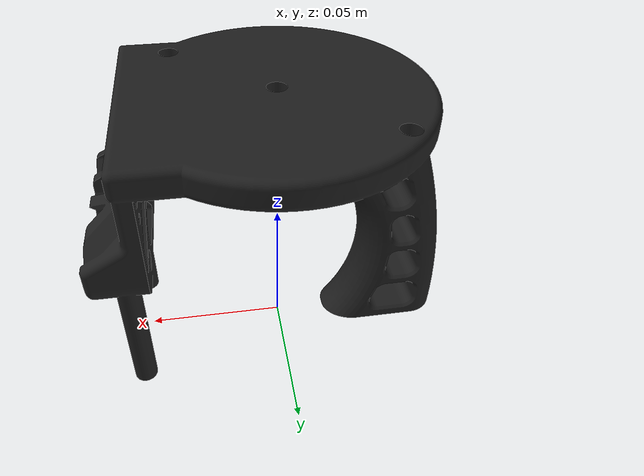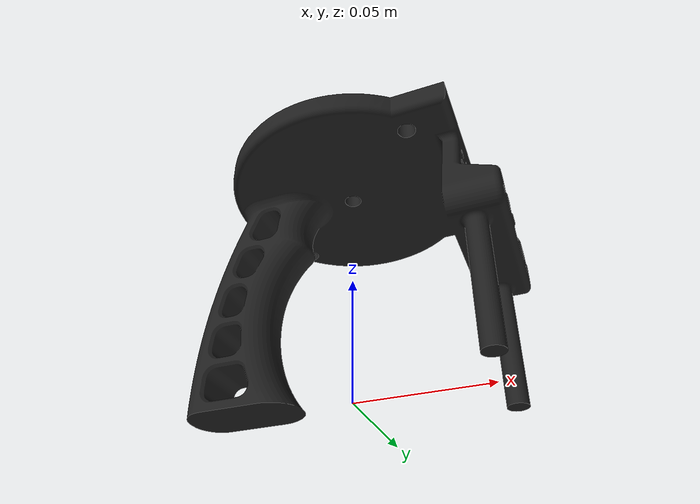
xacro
<?xml version="1.0"?>
<robot name="handheld_sensors_mount" xmlns:xacro="http://www.ros.org/wiki/xacro">

  <xacro:property name="mass" value="1.0" />

  <link name="handheld_sensors_mount_link">
    <visual>
      <geometry>
        <mesh filename="package://common_gazebo_models/meshes/handheld_sensors_mount/handheld_sensors_mount.dae"/>
      </geometry>
    </visual>
    <collision>
      <origin xyz="0 0 0.05" rpy="0 0 0"/>
      <geometry>
        <box size="0.127 0.1 0.1"/>
      </geometry>
    </collision>
  </link>

  <gazebo reference="handheld_sensors_mount_link">
    <material>Gazebo/Black</material>
  </gazebo>

  <link name="d435_mount_link"/>
  <link name="t265_mount_link"/>
  <link name="velodyne_mount_link"/>

  <joint name="mount_to_d435_joint" type="fixed">
    <parent link="handheld_sensors_mount_link"></parent>
    <child link="d435_mount_link"></child>
    <origin xyz="0.050214 0.00587 0.083955" rpy="0 0 0"/>
  </joint>

  <joint name="mount_to_t265_joint" type="fixed">
    <parent link="handheld_sensors_mount_link"></parent>
    <child link="t265_mount_link"></child>
    <origin xyz="0.063514 -0.002601 0.05425" rpy="0 0 0"/>
  </joint>

  <joint name="mount_to_velodyne_joint" type="fixed">
    <parent link="handheld_sensors_mount_link"></parent>
    <child link="velodyne_mount_link"></child>
    <origin xyz="0 0 0.1" rpy="0 0 0.742" />
  </joint>

</robot>
